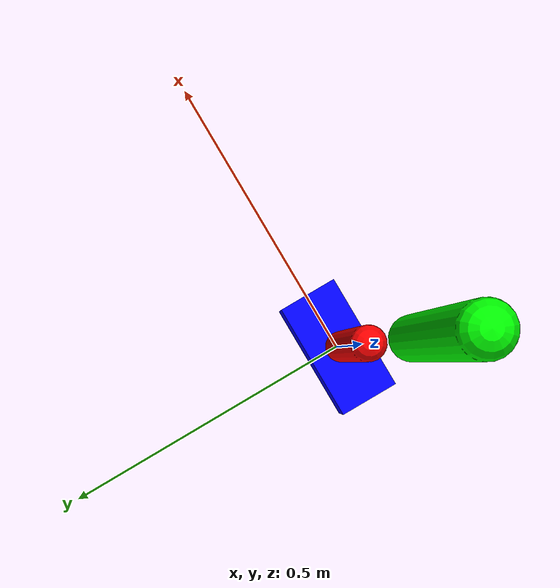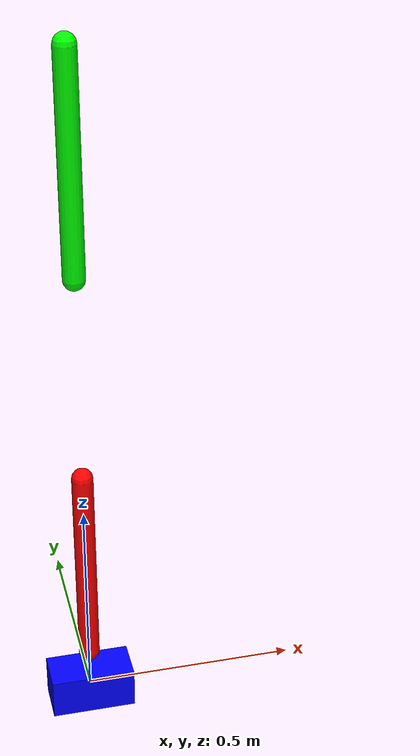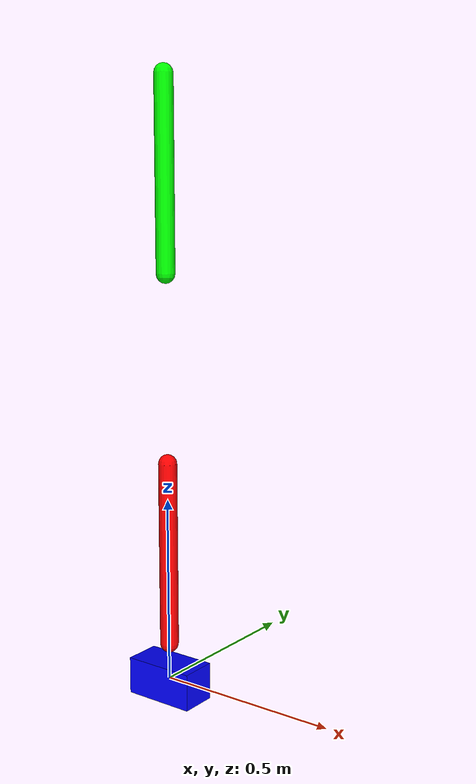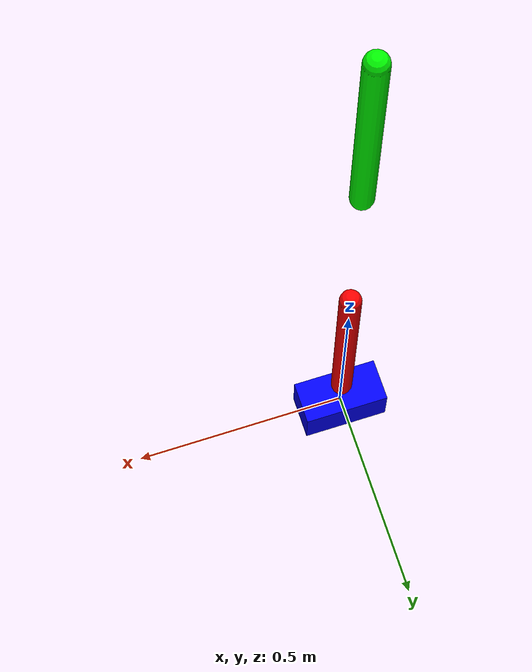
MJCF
<mujoco model="cartpole_two_poles">
  <option timestep="0.01"/>
  <worldbody>
    <body name="cart" pos="0 0 0">
      <joint name="slider" type="slide" axis="1 0 0"/>
      <geom type="box" size="0.1 0.05 0.05" rgba="0 0 1 1"/>

      <body name="pole1" pos="0 0 0.1">
        <joint name="hinge1" type="hinge" axis="0 1 0" limited="false"/>
        <geom type="capsule" fromto="0 0 0 0 0 .5" size="0.025" rgba="1 0 0 1"/>

        <body name="pole2" pos="0 0 1">
          <joint name="hinge2" type="hinge" axis="0 1 0" limited="false"/>
          <geom type="capsule" fromto="0 0 0 0 0 .5" size="0.025" rgba="0 1 0 1"/>
        </body>
      </body>
    </body>
  </worldbody>

  <actuator>
    <motor joint="slider" ctrlrange="-1 1" gear="10"/>
  </actuator>
</mujoco>
